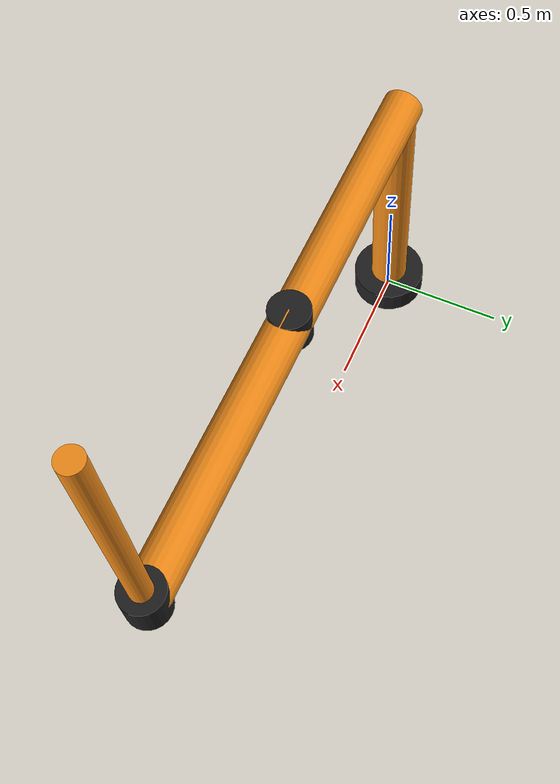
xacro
<?xml version='1.0' encoding='utf-8'?>
<robot xmlns:xacro="http://www.ros.org/wiki/xacro" name="robot">

    <xacro:property name="mass" value="1"/>

    <xacro:property name="link_0_length" value="1"/>
    <xacro:property name="link_1_length" value="1"/>
    <xacro:property name="link_2_length" value="1"/>
    <xacro:property name="link_3_length" value="1"/>
    <xacro:property name="unit_length" value="0.15"/>
    <xacro:property name="base_link_length" value="0.1"/>

    <xacro:property name="link_0_radius" value="0.075"/>
    <xacro:property name="link_1_radius" value="0.075"/>
    <xacro:property name="link_2_radius" value="0.075"/>
    <xacro:property name="link_3_radius" value="0.0375"/>
    <xacro:property name="unit_radius" value="0.075"/>
    <xacro:property name="base_link_radius" value="0.15"/>

    <xacro:include filename="$(find foundations_assignment)/urdf/robot.gazebo" />

    <link name="world"/>

    <joint name="base_joint" type="fixed">
        <parent link="world"/>
        <child link="base_link"/>
        <origin xyz="0 0 0" rpy="0 0 -1.57"/>
    </joint>

    <link name="base_link">
        <visual>
            <origin xyz="0 0 ${base_link_length / 2}" rpy="0 0 0"/>
            <geometry>
                <cylinder length="${base_link_length}" radius="${base_link_radius}"/>
            </geometry>
        </visual>

        <collision>
            <origin xyz="0 0 ${base_link_length / 2}" rpy="0 0 0"/>
            <geometry>
                <cylinder length="${base_link_length}" radius="${base_link_radius}"/>
            </geometry>
        </collision>

        <inertial>
            <origin xyz="0 0 ${base_link_length / 2}" rpy="0 0 0"/>
			<mass value="1"/>
			<inertia
			  ixx="${mass/12*(3*base_link_radius*base_link_radius + base_link_length*base_link_length)}" ixy="0.0" ixz="0.0"
			  iyy="${mass/12*(3*base_link_radius*base_link_radius + base_link_length*base_link_length)}" iyz="0.0"
			  izz="${mass/2*(base_link_radius*base_link_radius)}"/>
        </inertial>
    </link>

    <joint name="joint1" type="continuous">
      <origin rpy="0 0 0" xyz="0 0 ${base_link_length}"/>
      <parent link="base_link"/>
      <child link="link0"/>
      <axis xyz="0 0 1"/>
      <dynamics damping="0.7"/>
      <limit effort="1000" lower="-10" upper="10" velocity="2.1750"/>
    </joint>

    <link name="link0">
        <visual>
            <origin xyz="0 0 ${link_0_length / 2}" rpy="0 0 0"/>
            <geometry>
                <cylinder length="${link_0_length}" radius="${link_0_radius}"/>
            </geometry>
        </visual>

        <collision>
            <origin xyz="0 0 ${link_0_length / 2}" rpy="0 0 0"/>
            <geometry>
                <cylinder length="${link_0_length}" radius="${link_0_radius}"/>
            </geometry>
        </collision>

        <inertial>
            <origin xyz="0 0 ${link_0_length / 2}" rpy="0 0 0"/>
			<mass value="1"/>
			<inertia
			  ixx="${mass/12*(3*link_0_radius*link_0_radius + link_0_length*link_0_length)}" ixy="0.0" ixz="0.0"
			  iyy="${mass/12*(3*link_0_radius*link_0_radius + link_0_length*link_0_length)}" iyz="0.0"
			  izz="${mass/2*(link_0_radius*link_0_radius)}"/>
        </inertial>
    </link>

    <joint name="fixedjoint0" type="fixed">=
      <origin rpy="0 0 0" xyz="0 0 ${link_0_length}"/>
      <parent link="link0"/>
      <child link="link1"/>
      <axis xyz="0 0 1"/>=
    </joint>

    <link name="link1">
        <visual>
            <origin xyz="0 ${link_1_length/2 - link_0_radius} 0" rpy="1.57 0 0"/>
            <geometry>
                <cylinder length="${link_1_length}" radius="${link_1_radius}"/>
            </geometry>
        </visual>

        <collision>
            <origin xyz="0 ${link_1_length/2 - link_0_radius} 0" rpy="1.57 0 0"/>
            <geometry>
                <cylinder length="${link_1_length}" radius="${link_1_radius}"/>
            </geometry>
        </collision>

        <inertial>
            <origin xyz="0 ${link_1_length/2 - link_0_radius} 0" rpy="1.57 0 0"/>
			<mass value="1"/>
			<inertia
			  ixx="${mass/3*link_1_length*link_1_length}" ixy="0.0" ixz="0.0"
			  iyy="1" iyz="0.0"
			  izz="${mass/3*link_1_length*link_1_length}"/>
        </inertial>
    </link>

    <joint name="joint2" type="revolute">
      <origin rpy="0 0 0" xyz="0 ${link_1_length - unit_radius} 0"/>
      <parent link="link1"/>
      <child link="joint2link"/>
      <axis xyz="0 0 1"/>
      <limit effort="1000" lower="-2.8973" upper="2.8973" velocity="2.1750"/>
    </joint>

    <link name="joint2link">
        <visual>
            <origin xyz="0 0 0" rpy="0 0 0"/>
            <geometry>
                <cylinder length="${unit_length}" radius="${unit_radius}"/>
            </geometry>
        </visual>

        <collision>
            <origin xyz="0 0 0" rpy="0 0 0"/>
            <geometry>
                <cylinder length="${unit_length}" radius="${unit_radius}"/>
            </geometry>
        </collision>

        <inertial>
            <origin xyz="0 0 0" rpy="0 0 0"/>
			<mass value="1"/>
			<inertia
			  ixx="${mass/12*(3*unit_radius*unit_radius + unit_length*unit_length)}" ixy="0.0" ixz="0.0"
			  iyy="${mass/12*(3*unit_radius*unit_radius + unit_length*unit_length)}" iyz="0.0"
			  izz="${mass/2*(unit_radius*unit_radius)}"/>
        </inertial>
    </link>

    <joint name="fixedjoint1" type="fixed">
      <origin rpy="0 0 0" xyz="0 0 0"/>
      <parent link="joint2link"/>
      <child link="link2"/>
    </joint>

    <link name="link2">
        <visual>
            <origin xyz="0 ${link_2_length/2} 0" rpy="1.57 0 0"/>
            <geometry>
                <cylinder length="${link_2_length}" radius="${link_2_radius}"/>
            </geometry>
        </visual>

        <collision>
            <origin xyz="0 ${link_2_length/2} 0" rpy="1.57 0 0"/>
            <geometry>
                <cylinder length="${link_2_length}" radius="${link_2_radius}"/>
            </geometry>
        </collision>

        <inertial>
            <origin xyz="0 ${link_2_length/2} 0" rpy="1.57 0 0"/>
			<mass value="1"/>
			<inertia
			  ixx="${mass/3*link_2_length*link_2_length}" ixy="0.0" ixz="0.0"
			  iyy="1" iyz="0.0"
			  izz="${mass/3*link_2_length*link_2_length}"/>
        </inertial>
    </link>

    <joint name="fixedjoint2" type="fixed">
      <origin rpy="0 0 0" xyz="0 ${link_2_length} 0"/>
      <parent link="link2"/>
      <child link="joint3link"/>
    </joint>

    <link name="joint3link">
        <visual>
            <origin xyz="0 0 0" rpy="0 0 0"/>
            <geometry>
                <cylinder length="${unit_length}" radius="${unit_radius}"/>
            </geometry>
        </visual>

        <collision>
            <origin xyz="0 0 0" rpy="0 0 0"/>
            <geometry>
                <cylinder length="${unit_length}" radius="${unit_radius}"/>
            </geometry>
        </collision>

        <inertial>
            <origin xyz="0 0 0" rpy="0 0 0"/>
			<mass value="1"/>
			<inertia
			  ixx="${mass/12*(3*unit_radius*unit_radius + unit_length*unit_length)}" ixy="0.0" ixz="0.0"
			  iyy="${mass/12*(3*unit_radius*unit_radius + unit_length*unit_length)}" iyz="0.0"
			  izz="${mass/2*(unit_radius*unit_radius)}"/>
        </inertial>
    </link>

    <joint name="joint3" type="prismatic">
      <origin rpy="0 0 0" xyz="0 0 0"/>
      <parent link="joint3link"/>
      <child link="link3"/>
      <axis xyz="0 0 -1"/>
      <limit effort="1000" lower="0" upper="1" velocity="2"/>
    </joint>

    <link name="link3">
        <visual>
            <origin xyz="0 0 ${link_3_length/2}" rpy="0 0 0"/>
            <geometry>
                <cylinder length="${link_3_length}" radius="${link_3_radius}"/>
            </geometry>
        </visual>

        <collision>
            <origin xyz="0 0 ${link_3_length/2}" rpy="0 0 0"/>
            <geometry>
                <cylinder length="${link_3_length}" radius="${link_3_radius}"/>
            </geometry>
        </collision>

        <inertial>
            <origin xyz="0 0 ${link_3_length/2}" rpy="0 0 0"/>
			<mass value="0.1"/>
			<inertia
			  ixx="${mass/12*(3*link_3_radius*link_3_radius + link_3_length*link_3_length)}" ixy="0.0" ixz="0.0"
			  iyy="${mass/12*(3*link_3_radius*link_3_radius + link_3_length*link_3_length)}" iyz="0.0"
			  izz="${mass/2*(link_3_radius*link_3_radius)}"/>
        </inertial>
    </link>

    <transmission name="tran1">
    <type>transmission_interface/SimpleTransmission</type>
    <joint name="joint1">
      <hardwareInterface>hardware_interface/EffortJointInterface</hardwareInterface>
    </joint>
    <actuator name="motor1">
    <hardwareInterface>hardware_interface/EffortJointInterface</hardwareInterface>
      <mechanicalReduction>1</mechanicalReduction>
    </actuator>
  </transmission>

  <transmission name="tran2">
    <type>transmission_interface/SimpleTransmission</type>
    <joint name="joint2">
      <hardwareInterface>hardware_interface/EffortJointInterface</hardwareInterface>
    </joint>
    <actuator name="motor2">
    <hardwareInterface>hardware_interface/EffortJointInterface</hardwareInterface>
      <mechanicalReduction>1</mechanicalReduction>
    </actuator>
  </transmission>

   <transmission name="tran3">
      <type>transmission_interface/SimpleTransmission</type>
      <joint name="joint3">
	<hardwareInterface>hardware_interface/EffortJointInterface</hardwareInterface>
      </joint>
      <actuator name="motor3">
      <hardwareInterface>hardware_interface/EffortJointInterface</hardwareInterface>
	<mechanicalReduction>1</mechanicalReduction>
      </actuator>
    </transmission>

</robot>
